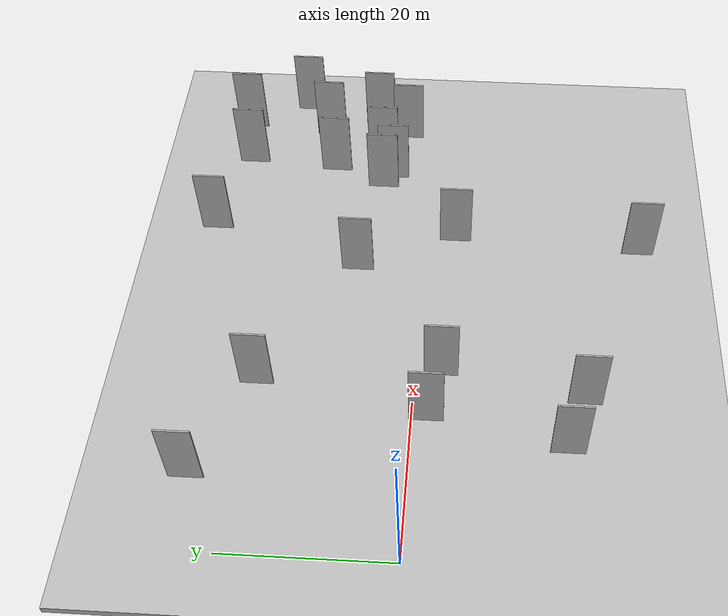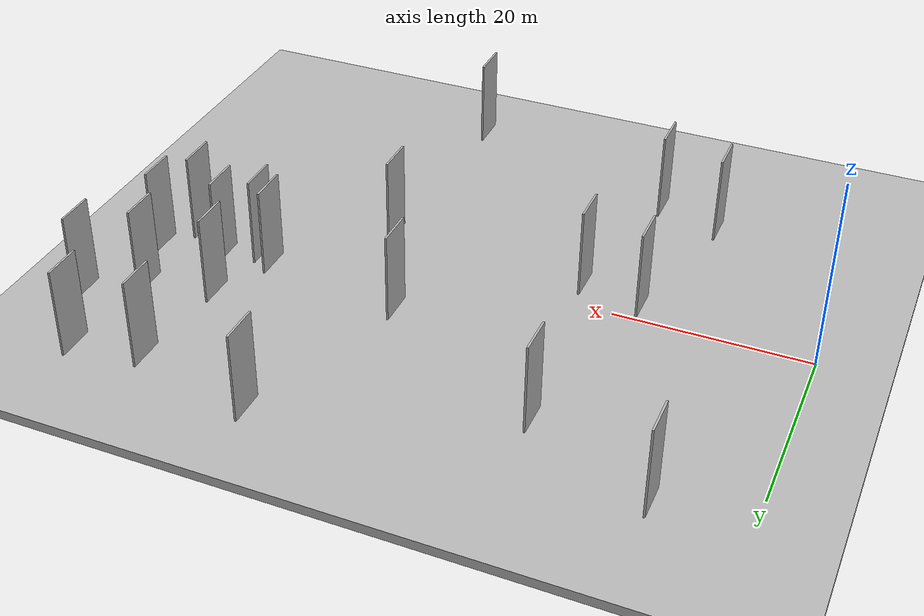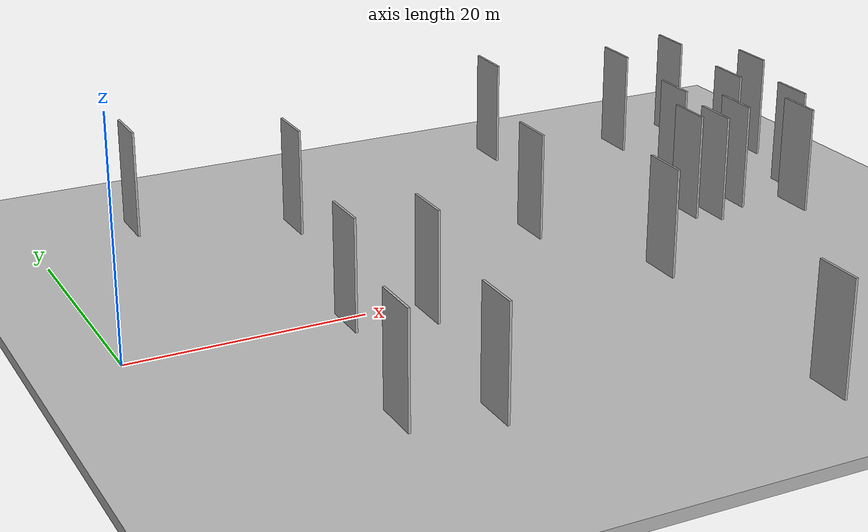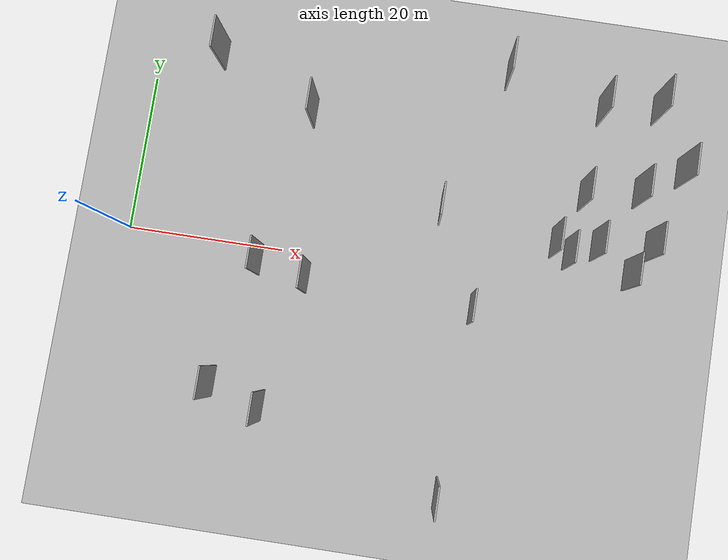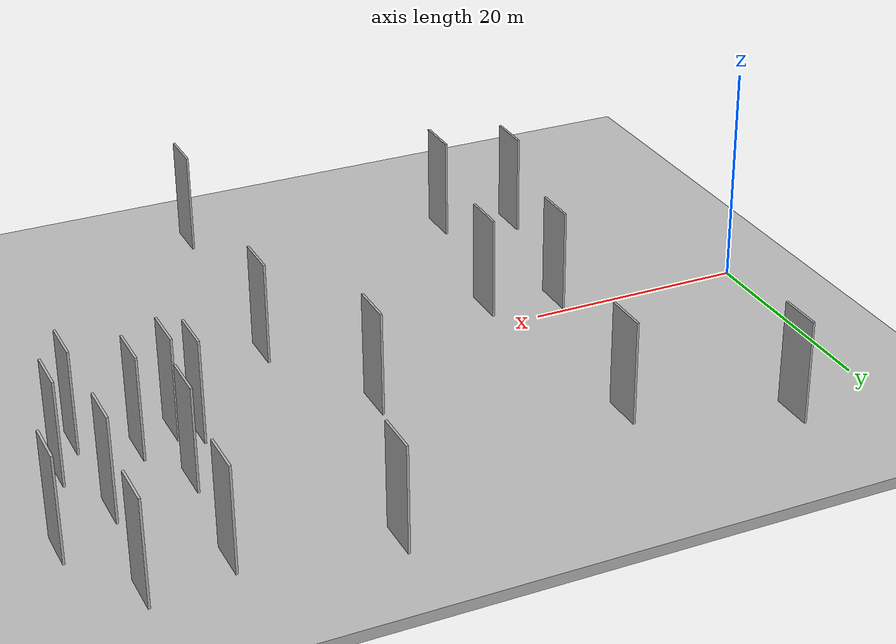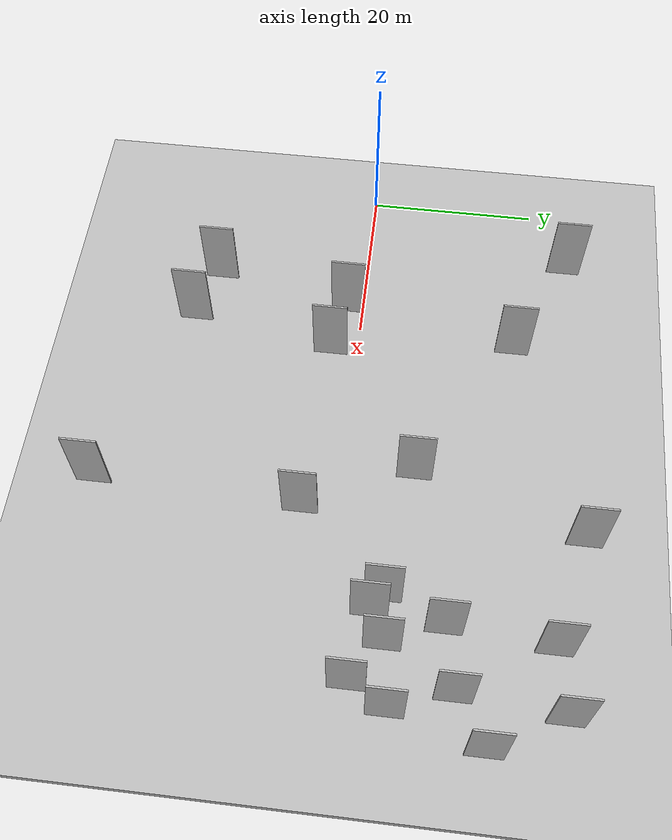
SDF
<?xml version="1.0" encoding="utf-8"?>

<sdf version="1.6">

   <world name="default">

      <gui fullscreen="0">

         <camera name="user_camera">

            <pose>-15 0 4.57585 0 0 0</pose>

            <view_controller>orbit</view_controller>

         </camera>

      </gui>

      <scene>

         <sky>

           <clouds>

             <speed>12</speed>

           </clouds>

         </sky>

         <ambient>0.4 0.4 0.4 1</ambient>

         <background>0.7 0.7 0.7 1</background>

         <shadows>1</shadows>

      </scene>

      <gravity>0 0 -9.8066</gravity>

      <magnetic_field>6e-06 2.3e-05 -4.2e-05</magnetic_field>

      <physics default="0" name="default_physics" type="ode">

         <ode>

            <solver>

               <type>quick</type>

               <iters>10</iters>

               <sor>1.0</sor>

               <use_dynamic_moi_rescaling>0</use_dynamic_moi_rescaling>

            </solver>

            <constraints>

               <cfm>0</cfm>

               <erp>0.2</erp>

               <contact_max_correcting_vel>100</contact_max_correcting_vel>

               <contact_surface_layer>0.001</contact_surface_layer>

            </constraints>

         </ode>

         <max_step_size>0.004</max_step_size>

         <real_time_factor>1</real_time_factor>

         <real_time_update_rate>250</real_time_update_rate>

      </physics>

      <light name="sun" type="directional">

         <cast_shadows>1</cast_shadows>

         <pose>0 0 10 0 0 0</pose>

         <diffuse>0.8 0.8 0.8 1</diffuse>

         <specular>0.2 0.2 0.2 1</specular>

         <attenuation>

            <range>1000</range>

            <constant>0.9</constant>

            <linear>0.01</linear>

            <quadratic>0.001</quadratic>

         </attenuation>

         <direction>-0.5 0.1 -0.9</direction>

      </light>

      <include>

         <name>ground_plane_1</name>

         <uri>model://HANNAS_ground_plane</uri>

         <pose>0 0 0  0 0 0</pose>

      </include>

      <include>

         <name>ground_plane_2</name>

         <uri>model://HANNAS_ground_plane</uri>

         <pose>100 0 0  0 0 0</pose>

      </include>

      <model name="HANNAS_wall_1">

         <static>1</static>

         <pose frame="">8.7410 24.3856 0.0 0.000000 0.000000 1.570796</pose>

         <link name="link">

            <pose frame="">0 0 5.00 0 0 0</pose>

            <collision name="collision">

               <geometry>

                  <box>

                     <size>4.00 0.2 10.00</size>

                  </box>

               </geometry>

               <max_contacts>10</max_contacts>

               <surface>

                  <contact>

                     <ode/>

                  </contact>

                  <bounce/>

                  <friction>

                     <torsional>

                        <ode/>

                     </torsional>

                     <ode/>

                  </friction>

               </surface>

            </collision>

            <visual name="visual">

               <cast_shadows>0</cast_shadows>

               <geometry>

                  <box>

                     <size>4.00 0.2 10.00</size>

                  </box>

               </geometry>

               <material>

                  <script>

                     <uri>model://HANNAS_wall/materials/scripts</uri>

                     <uri>model://HANNAS_wall/materials/textures</uri>

                     <name>vrc/HANNAS_wall</name>

                  </script>

               </material>

            </visual>

            <self_collide>0</self_collide>

            <enable_wind>0</enable_wind>

            <kinematic>0</kinematic>

         </link>

      </model>

      <model name="HANNAS_wall_2">

         <static>1</static>

         <pose frame="">58.1791 24.2173 0.0 0.000000 0.000000 1.570796</pose>

         <link name="link">

            <pose frame="">0 0 5.00 0 0 0</pose>

            <collision name="collision">

               <geometry>

                  <box>

                     <size>4.00 0.2 10.00</size>

                  </box>

               </geometry>

               <max_contacts>10</max_contacts>

               <surface>

                  <contact>

                     <ode/>

                  </contact>

                  <bounce/>

                  <friction>

                     <torsional>

                        <ode/>

                     </torsional>

                     <ode/>

                  </friction>

               </surface>

            </collision>

            <visual name="visual">

               <cast_shadows>0</cast_shadows>

               <geometry>

                  <box>

                     <size>4.00 0.2 10.00</size>

                  </box>

               </geometry>

               <material>

                  <script>

                     <uri>model://HANNAS_wall/materials/scripts</uri>

                     <uri>model://HANNAS_wall/materials/textures</uri>

                     <name>vrc/HANNAS_wall</name>

                  </script>

               </material>

            </visual>

            <self_collide>0</self_collide>

            <enable_wind>0</enable_wind>

            <kinematic>0</kinematic>

         </link>

      </model>

      <model name="HANNAS_wall_3">

         <static>1</static>

         <pose frame="">45.6811 27.2449 0.0 0.000000 0.000000 1.570796</pose>

         <link name="link">

            <pose frame="">0 0 5.00 0 0 0</pose>

            <collision name="collision">

               <geometry>

                  <box>

                     <size>4.00 0.2 10.00</size>

                  </box>

               </geometry>

               <max_contacts>10</max_contacts>

               <surface>

                  <contact>

                     <ode/>

                  </contact>

                  <bounce/>

                  <friction>

                     <torsional>

                        <ode/>

                     </torsional>

                     <ode/>

                  </friction>

               </surface>

            </collision>

            <visual name="visual">

               <cast_shadows>0</cast_shadows>

               <geometry>

                  <box>

                     <size>4.00 0.2 10.00</size>

                  </box>

               </geometry>

               <material>

                  <script>

                     <uri>model://HANNAS_wall/materials/scripts</uri>

                     <uri>model://HANNAS_wall/materials/textures</uri>

                     <name>vrc/HANNAS_wall</name>

                  </script>

               </material>

            </visual>

            <self_collide>0</self_collide>

            <enable_wind>0</enable_wind>

            <kinematic>0</kinematic>

         </link>

      </model>

      <model name="HANNAS_wall_4">

         <static>1</static>

         <pose frame="">45.1599 -3.9711 0.0 0.000000 0.000000 1.570796</pose>

         <link name="link">

            <pose frame="">0 0 5.00 0 0 0</pose>

            <collision name="collision">

               <geometry>

                  <box>

                     <size>4.00 0.2 10.00</size>

                  </box>

               </geometry>

               <max_contacts>10</max_contacts>

               <surface>

                  <contact>

                     <ode/>

                  </contact>

                  <bounce/>

                  <friction>

                     <torsional>

                        <ode/>

                     </torsional>

                     <ode/>

                  </friction>

               </surface>

            </collision>

            <visual name="visual">

               <cast_shadows>0</cast_shadows>

               <geometry>

                  <box>

                     <size>4.00 0.2 10.00</size>

                  </box>

               </geometry>

               <material>

                  <script>

                     <uri>model://HANNAS_wall/materials/scripts</uri>

                     <uri>model://HANNAS_wall/materials/textures</uri>

                     <name>vrc/HANNAS_wall</name>

                  </script>

               </material>

            </visual>

            <self_collide>0</self_collide>

            <enable_wind>0</enable_wind>

            <kinematic>0</kinematic>

         </link>

      </model>

      <model name="HANNAS_wall_5">

         <static>1</static>

         <pose frame="">21.5602 18.4425 0.0 0.000000 0.000000 1.570796</pose>

         <link name="link">

            <pose frame="">0 0 5.00 0 0 0</pose>

            <collision name="collision">

               <geometry>

                  <box>

                     <size>4.00 0.2 10.00</size>

                  </box>

               </geometry>

               <max_contacts>10</max_contacts>

               <surface>

                  <contact>

                     <ode/>

                  </contact>

                  <bounce/>

                  <friction>

                     <torsional>

                        <ode/>

                     </torsional>

                     <ode/>

                  </friction>

               </surface>

            </collision>

            <visual name="visual">

               <cast_shadows>0</cast_shadows>

               <geometry>

                  <box>

                     <size>4.00 0.2 10.00</size>

                  </box>

               </geometry>

               <material>

                  <script>

                     <uri>model://HANNAS_wall/materials/scripts</uri>

                     <uri>model://HANNAS_wall/materials/textures</uri>

                     <name>vrc/HANNAS_wall</name>

                  </script>

               </material>

            </visual>

            <self_collide>0</self_collide>

            <enable_wind>0</enable_wind>

            <kinematic>0</kinematic>

         </link>

      </model>

      <model name="HANNAS_wall_6">

         <static>1</static>

         <pose frame="">65.2739 25.4562 0.0 0.000000 0.000000 1.570796</pose>

         <link name="link">

            <pose frame="">0 0 5.00 0 0 0</pose>

            <collision name="collision">

               <geometry>

                  <box>

                     <size>4.00 0.2 10.00</size>

                  </box>

               </geometry>

               <max_contacts>10</max_contacts>

               <surface>

                  <contact>

                     <ode/>

                  </contact>

                  <bounce/>

                  <friction>

                     <torsional>

                        <ode/>

                     </torsional>

                     <ode/>

                  </friction>

               </surface>

            </collision>

            <visual name="visual">

               <cast_shadows>0</cast_shadows>

               <geometry>

                  <box>

                     <size>4.00 0.2 10.00</size>

                  </box>

               </geometry>

               <material>

                  <script>

                     <uri>model://HANNAS_wall/materials/scripts</uri>

                     <uri>model://HANNAS_wall/materials/textures</uri>

                     <name>vrc/HANNAS_wall</name>

                  </script>

               </material>

            </visual>

            <self_collide>0</self_collide>

            <enable_wind>0</enable_wind>

            <kinematic>0</kinematic>

         </link>

      </model>

      <model name="HANNAS_wall_7">

         <static>1</static>

         <pose frame="">14.1834 -17.8994 0.0 0.000000 0.000000 1.570796</pose>

         <link name="link">

            <pose frame="">0 0 5.00 0 0 0</pose>

            <collision name="collision">

               <geometry>

                  <box>

                     <size>4.00 0.2 10.00</size>

                  </box>

               </geometry>

               <max_contacts>10</max_contacts>

               <surface>

                  <contact>

                     <ode/>

                  </contact>

                  <bounce/>

                  <friction>

                     <torsional>

                        <ode/>

                     </torsional>

                     <ode/>

                  </friction>

               </surface>

            </collision>

            <visual name="visual">

               <cast_shadows>0</cast_shadows>

               <geometry>

                  <box>

                     <size>4.00 0.2 10.00</size>

                  </box>

               </geometry>

               <material>

                  <script>

                     <uri>model://HANNAS_wall/materials/scripts</uri>

                     <uri>model://HANNAS_wall/materials/textures</uri>

                     <name>vrc/HANNAS_wall</name>

                  </script>

               </material>

            </visual>

            <self_collide>0</self_collide>

            <enable_wind>0</enable_wind>

            <kinematic>0</kinematic>

         </link>

      </model>

      <model name="HANNAS_wall_8">

         <static>1</static>

         <pose frame="">66.4962 7.3960 0.0 0.000000 0.000000 1.570796</pose>

         <link name="link">

            <pose frame="">0 0 5.00 0 0 0</pose>

            <collision name="collision">

               <geometry>

                  <box>

                     <size>4.00 0.2 10.00</size>

                  </box>

               </geometry>

               <max_contacts>10</max_contacts>

               <surface>

                  <contact>

                     <ode/>

                  </contact>

                  <bounce/>

                  <friction>

                     <torsional>

                        <ode/>

                     </torsional>

                     <ode/>

                  </friction>

               </surface>

            </collision>

            <visual name="visual">

               <cast_shadows>0</cast_shadows>

               <geometry>

                  <box>

                     <size>4.00 0.2 10.00</size>

                  </box>

               </geometry>

               <material>

                  <script>

                     <uri>model://HANNAS_wall/materials/scripts</uri>

                     <uri>model://HANNAS_wall/materials/textures</uri>

                     <name>vrc/HANNAS_wall</name>

                  </script>

               </material>

            </visual>

            <self_collide>0</self_collide>

            <enable_wind>0</enable_wind>

            <kinematic>0</kinematic>

         </link>

      </model>

      <model name="HANNAS_wall_9">

         <static>1</static>

         <pose frame="">39.6112 8.2099 0.0 0.000000 0.000000 1.570796</pose>

         <link name="link">

            <pose frame="">0 0 5.00 0 0 0</pose>

            <collision name="collision">

               <geometry>

                  <box>

                     <size>4.00 0.2 10.00</size>

                  </box>

               </geometry>

               <max_contacts>10</max_contacts>

               <surface>

                  <contact>

                     <ode/>

                  </contact>

                  <bounce/>

                  <friction>

                     <torsional>

                        <ode/>

                     </torsional>

                     <ode/>

                  </friction>

               </surface>

            </collision>

            <visual name="visual">

               <cast_shadows>0</cast_shadows>

               <geometry>

                  <box>

                     <size>4.00 0.2 10.00</size>

                  </box>

               </geometry>

               <material>

                  <script>

                     <uri>model://HANNAS_wall/materials/scripts</uri>

                     <uri>model://HANNAS_wall/materials/textures</uri>

                     <name>vrc/HANNAS_wall</name>

                  </script>

               </material>

            </visual>

            <self_collide>0</self_collide>

            <enable_wind>0</enable_wind>

            <kinematic>0</kinematic>

         </link>

      </model>

      <model name="HANNAS_wall_10">

         <static>1</static>

         <pose frame="">69.3458 17.5333 0.0 0.000000 0.000000 1.570796</pose>

         <link name="link">

            <pose frame="">0 0 5.00 0 0 0</pose>

            <collision name="collision">

               <geometry>

                  <box>

                     <size>4.00 0.2 10.00</size>

                  </box>

               </geometry>

               <max_contacts>10</max_contacts>

               <surface>

                  <contact>

                     <ode/>

                  </contact>

                  <bounce/>

                  <friction>

                     <torsional>

                        <ode/>

                     </torsional>

                     <ode/>

                  </friction>

               </surface>

            </collision>

            <visual name="visual">

               <cast_shadows>0</cast_shadows>

               <geometry>

                  <box>

                     <size>4.00 0.2 10.00</size>

                  </box>

               </geometry>

               <material>

                  <script>

                     <uri>model://HANNAS_wall/materials/scripts</uri>

                     <uri>model://HANNAS_wall/materials/textures</uri>

                     <name>vrc/HANNAS_wall</name>

                  </script>

               </material>

            </visual>

            <self_collide>0</self_collide>

            <enable_wind>0</enable_wind>

            <kinematic>0</kinematic>

         </link>

      </model>

      <model name="HANNAS_wall_11">

         <static>1</static>

         <pose frame="">64.1950 3.3108 0.0 0.000000 0.000000 1.570796</pose>

         <link name="link">

            <pose frame="">0 0 5.00 0 0 0</pose>

            <collision name="collision">

               <geometry>

                  <box>

                     <size>4.00 0.2 10.00</size>

                  </box>

               </geometry>

               <max_contacts>10</max_contacts>

               <surface>

                  <contact>

                     <ode/>

                  </contact>

                  <bounce/>

                  <friction>

                     <torsional>

                        <ode/>

                     </torsional>

                     <ode/>

                  </friction>

               </surface>

            </collision>

            <visual name="visual">

               <cast_shadows>0</cast_shadows>

               <geometry>

                  <box>

                     <size>4.00 0.2 10.00</size>

                  </box>

               </geometry>

               <material>

                  <script>

                     <uri>model://HANNAS_wall/materials/scripts</uri>

                     <uri>model://HANNAS_wall/materials/textures</uri>

                     <name>vrc/HANNAS_wall</name>

                  </script>

               </material>

            </visual>

            <self_collide>0</self_collide>

            <enable_wind>0</enable_wind>

            <kinematic>0</kinematic>

         </link>

      </model>

      <model name="HANNAS_wall_12">

         <static>1</static>

         <pose frame="">23.9618 -3.1384 0.0 0.000000 0.000000 1.570796</pose>

         <link name="link">

            <pose frame="">0 0 5.00 0 0 0</pose>

            <collision name="collision">

               <geometry>

                  <box>

                     <size>4.00 0.2 10.00</size>

                  </box>

               </geometry>

               <max_contacts>10</max_contacts>

               <surface>

                  <contact>

                     <ode/>

                  </contact>

                  <bounce/>

                  <friction>

                     <torsional>

                        <ode/>

                     </torsional>

                     <ode/>

                  </friction>

               </surface>

            </collision>

            <visual name="visual">

               <cast_shadows>0</cast_shadows>

               <geometry>

                  <box>

                     <size>4.00 0.2 10.00</size>

                  </box>

               </geometry>

               <material>

                  <script>

                     <uri>model://HANNAS_wall/materials/scripts</uri>

                     <uri>model://HANNAS_wall/materials/textures</uri>

                     <name>vrc/HANNAS_wall</name>

                  </script>

               </material>

            </visual>

            <self_collide>0</self_collide>

            <enable_wind>0</enable_wind>

            <kinematic>0</kinematic>

         </link>

      </model>

      <model name="HANNAS_wall_13">

         <static>1</static>

         <pose frame="">20.8192 -20.0079 0.0 0.000000 0.000000 1.570796</pose>

         <link name="link">

            <pose frame="">0 0 5.00 0 0 0</pose>

            <collision name="collision">

               <geometry>

                  <box>

                     <size>4.00 0.2 10.00</size>

                  </box>

               </geometry>

               <max_contacts>10</max_contacts>

               <surface>

                  <contact>

                     <ode/>

                  </contact>

                  <bounce/>

                  <friction>

                     <torsional>

                        <ode/>

                     </torsional>

                     <ode/>

                  </friction>

               </surface>

            </collision>

            <visual name="visual">

               <cast_shadows>0</cast_shadows>

               <geometry>

                  <box>

                     <size>4.00 0.2 10.00</size>

                  </box>

               </geometry>

               <material>

                  <script>

                     <uri>model://HANNAS_wall/materials/scripts</uri>

                     <uri>model://HANNAS_wall/materials/textures</uri>

                     <name>vrc/HANNAS_wall</name>

                  </script>

               </material>

            </visual>

            <self_collide>0</self_collide>

            <enable_wind>0</enable_wind>

            <kinematic>0</kinematic>

         </link>

      </model>

      <model name="HANNAS_wall_14">

         <static>1</static>

         <pose frame="">54.3925 6.1045 0.0 0.000000 0.000000 1.570796</pose>

         <link name="link">

            <pose frame="">0 0 5.00 0 0 0</pose>

            <collision name="collision">

               <geometry>

                  <box>

                     <size>4.00 0.2 10.00</size>

                  </box>

               </geometry>

               <max_contacts>10</max_contacts>

               <surface>

                  <contact>

                     <ode/>

                  </contact>

                  <bounce/>

                  <friction>

                     <torsional>

                        <ode/>

                     </torsional>

                     <ode/>

                  </friction>

               </surface>

            </collision>

            <visual name="visual">

               <cast_shadows>0</cast_shadows>

               <geometry>

                  <box>

                     <size>4.00 0.2 10.00</size>

                  </box>

               </geometry>

               <material>

                  <script>

                     <uri>model://HANNAS_wall/materials/scripts</uri>

                     <uri>model://HANNAS_wall/materials/textures</uri>

                     <name>vrc/HANNAS_wall</name>

                  </script>

               </material>

            </visual>

            <self_collide>0</self_collide>

            <enable_wind>0</enable_wind>

            <kinematic>0</kinematic>

         </link>

      </model>

      <model name="HANNAS_wall_15">

         <static>1</static>

         <pose frame="">17.5908 -1.7161 0.0 0.000000 0.000000 1.570796</pose>

         <link name="link">

            <pose frame="">0 0 5.00 0 0 0</pose>

            <collision name="collision">

               <geometry>

                  <box>

                     <size>4.00 0.2 10.00</size>

                  </box>

               </geometry>

               <max_contacts>10</max_contacts>

               <surface>

                  <contact>

                     <ode/>

                  </contact>

                  <bounce/>

                  <friction>

                     <torsional>

                        <ode/>

                     </torsional>

                     <ode/>

                  </friction>

               </surface>

            </collision>

            <visual name="visual">

               <cast_shadows>0</cast_shadows>

               <geometry>

                  <box>

                     <size>4.00 0.2 10.00</size>

                  </box>

               </geometry>

               <material>

                  <script>

                     <uri>model://HANNAS_wall/materials/scripts</uri>

                     <uri>model://HANNAS_wall/materials/textures</uri>

                     <name>vrc/HANNAS_wall</name>

                  </script>

               </material>

            </visual>

            <self_collide>0</self_collide>

            <enable_wind>0</enable_wind>

            <kinematic>0</kinematic>

         </link>

      </model>

      <model name="HANNAS_wall_16">

         <static>1</static>

         <pose frame="">56.2435 4.8201 0.0 0.000000 0.000000 1.570796</pose>

         <link name="link">

            <pose frame="">0 0 5.00 0 0 0</pose>

            <collision name="collision">

               <geometry>

                  <box>

                     <size>4.00 0.2 10.00</size>

                  </box>

               </geometry>

               <max_contacts>10</max_contacts>

               <surface>

                  <contact>

                     <ode/>

                  </contact>

                  <bounce/>

                  <friction>

                     <torsional>

                        <ode/>

                     </torsional>

                     <ode/>

                  </friction>

               </surface>

            </collision>

            <visual name="visual">

               <cast_shadows>0</cast_shadows>

               <geometry>

                  <box>

                     <size>4.00 0.2 10.00</size>

                  </box>

               </geometry>

               <material>

                  <script>

                     <uri>model://HANNAS_wall/materials/scripts</uri>

                     <uri>model://HANNAS_wall/materials/textures</uri>

                     <name>vrc/HANNAS_wall</name>

                  </script>

               </material>

            </visual>

            <self_collide>0</self_collide>

            <enable_wind>0</enable_wind>

            <kinematic>0</kinematic>

         </link>

      </model>

      <model name="HANNAS_wall_17">

         <static>1</static>

         <pose frame="">64.2090 14.1127 0.0 0.000000 0.000000 1.570796</pose>

         <link name="link">

            <pose frame="">0 0 5.00 0 0 0</pose>

            <collision name="collision">

               <geometry>

                  <box>

                     <size>4.00 0.2 10.00</size>

                  </box>

               </geometry>

               <max_contacts>10</max_contacts>

               <surface>

                  <contact>

                     <ode/>

                  </contact>

                  <bounce/>

                  <friction>

                     <torsional>

                        <ode/>

                     </torsional>

                     <ode/>

                  </friction>

               </surface>

            </collision>

            <visual name="visual">

               <cast_shadows>0</cast_shadows>

               <geometry>

                  <box>

                     <size>4.00 0.2 10.00</size>

                  </box>

               </geometry>

               <material>

                  <script>

                     <uri>model://HANNAS_wall/materials/scripts</uri>

                     <uri>model://HANNAS_wall/materials/textures</uri>

                     <name>vrc/HANNAS_wall</name>

                  </script>

               </material>

            </visual>

            <self_collide>0</self_collide>

            <enable_wind>0</enable_wind>

            <kinematic>0</kinematic>

         </link>

      </model>

      <model name="HANNAS_wall_18">

         <static>1</static>

         <pose frame="">57.2250 12.7128 0.0 0.000000 0.000000 1.570796</pose>

         <link name="link">

            <pose frame="">0 0 5.00 0 0 0</pose>

            <collision name="collision">

               <geometry>

                  <box>

                     <size>4.00 0.2 10.00</size>

                  </box>

               </geometry>

               <max_contacts>10</max_contacts>

               <surface>

                  <contact>

                     <ode/>

                  </contact>

                  <bounce/>

                  <friction>

                     <torsional>

                        <ode/>

                     </torsional>

                     <ode/>

                  </friction>

               </surface>

            </collision>

            <visual name="visual">

               <cast_shadows>0</cast_shadows>

               <geometry>

                  <box>

                     <size>4.00 0.2 10.00</size>

                  </box>

               </geometry>

               <material>

                  <script>

                     <uri>model://HANNAS_wall/materials/scripts</uri>

                     <uri>model://HANNAS_wall/materials/textures</uri>

                     <name>vrc/HANNAS_wall</name>

                  </script>

               </material>

            </visual>

            <self_collide>0</self_collide>

            <enable_wind>0</enable_wind>

            <kinematic>0</kinematic>

         </link>

      </model>

      <model name="HANNAS_wall_19">

         <static>1</static>

         <pose frame="">59.6406 6.4897 0.0 0.000000 0.000000 1.570796</pose>

         <link name="link">

            <pose frame="">0 0 5.00 0 0 0</pose>

            <collision name="collision">

               <geometry>

                  <box>

                     <size>4.00 0.2 10.00</size>

                  </box>

               </geometry>

               <max_contacts>10</max_contacts>

               <surface>

                  <contact>

                     <ode/>

                  </contact>

                  <bounce/>

                  <friction>

                     <torsional>

                        <ode/>

                     </torsional>

                     <ode/>

                  </friction>

               </surface>

            </collision>

            <visual name="visual">

               <cast_shadows>0</cast_shadows>

               <geometry>

                  <box>

                     <size>4.00 0.2 10.00</size>

                  </box>

               </geometry>

               <material>

                  <script>

                     <uri>model://HANNAS_wall/materials/scripts</uri>

                     <uri>model://HANNAS_wall/materials/textures</uri>

                     <name>vrc/HANNAS_wall</name>

                  </script>

               </material>

            </visual>

            <self_collide>0</self_collide>

            <enable_wind>0</enable_wind>

            <kinematic>0</kinematic>

         </link>

      </model>

      <model name="HANNAS_wall_20">

         <static>1</static>

         <pose frame="">44.1059 -27.4579 0.0 0.000000 0.000000 1.570796</pose>

         <link name="link">

            <pose frame="">0 0 5.00 0 0 0</pose>

            <collision name="collision">

               <geometry>

                  <box>

                     <size>4.00 0.2 10.00</size>

                  </box>

               </geometry>

               <max_contacts>10</max_contacts>

               <surface>

                  <contact>

                     <ode/>

                  </contact>

                  <bounce/>

                  <friction>

                     <torsional>

                        <ode/>

                     </torsional>

                     <ode/>

                  </friction>

               </surface>

            </collision>

            <visual name="visual">

               <cast_shadows>0</cast_shadows>

               <geometry>

                  <box>

                     <size>4.00 0.2 10.00</size>

                  </box>

               </geometry>

               <material>

                  <script>

                     <uri>model://HANNAS_wall/materials/scripts</uri>

                     <uri>model://HANNAS_wall/materials/textures</uri>

                     <name>vrc/HANNAS_wall</name>

                  </script>

               </material>

            </visual>

            <self_collide>0</self_collide>

            <enable_wind>0</enable_wind>

            <kinematic>0</kinematic>

         </link>

      </model>

   </world>

</sdf>

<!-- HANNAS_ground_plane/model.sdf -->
<sdf version="1.4">
<model name="HANNAS_ground_plane">
  <static>true</static>
    <link name="link">
      <collision name="collision">
        <geometry>
          <plane>
            <normal>0 0 1</normal>
            <size>1000 1000</size>
          </plane>
        </geometry>
        <surface>
          <friction>
            <ode>
              <mu>100</mu>
              <mu2>50</mu2>
            </ode>
          </friction>
        </surface>
      </collision>
      <visual name="visual">
        <cast_shadows>false</cast_shadows>
        <geometry>
          <plane>
            <normal>0 0 1</normal>
            <size>1000 1000</size>
          </plane>
        </geometry>
        <material>
          <script>
            <uri>model://HANNAS_ground_plane/materials/scripts/HANNAS_ground_plane.material</uri>
	    <uri>model://HANNAS_ground_plane/materials/textures</uri>
            <name>HANNASGroundPlane/Image</name>
          </script>
        </material>
      </visual>
    </link>
  </model>
</sdf>
